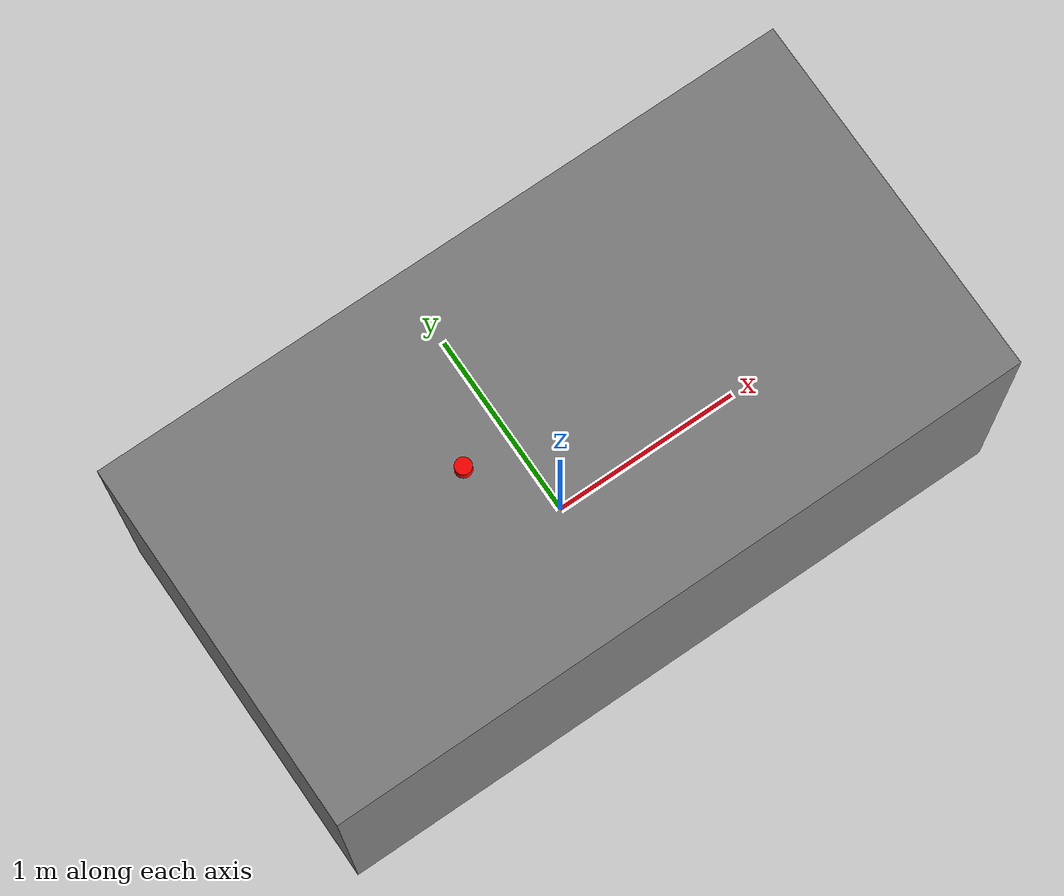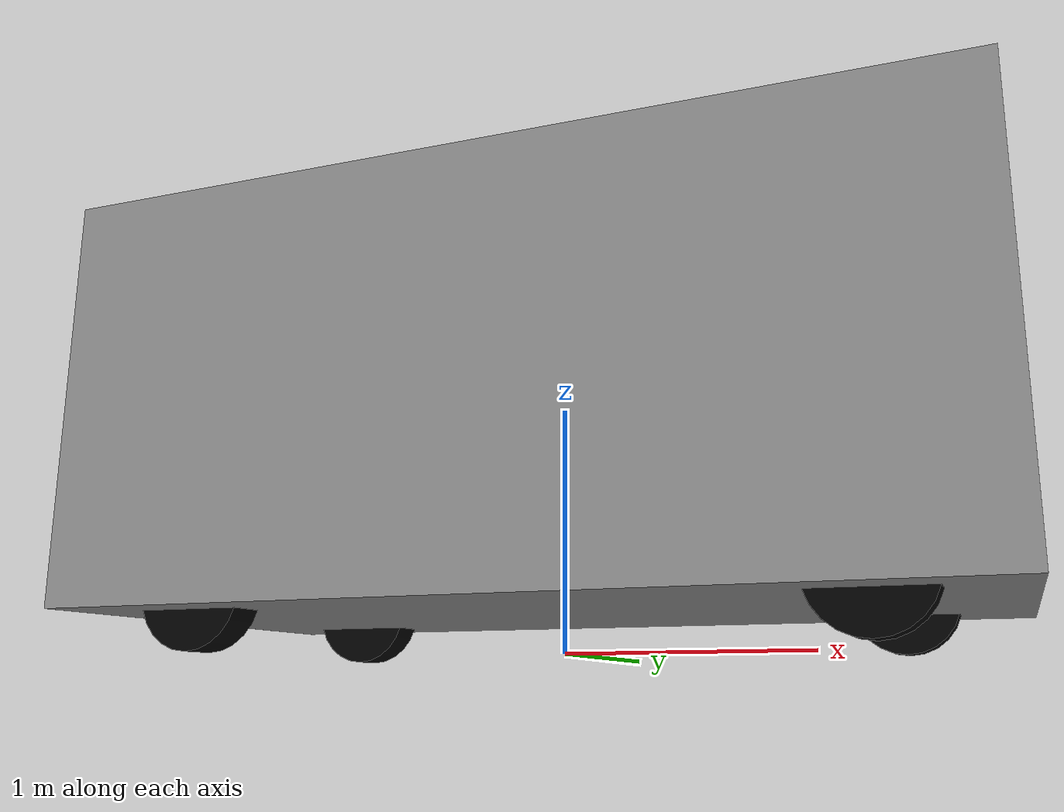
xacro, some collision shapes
<?xml version="1.0"?>
<robot name="imiev" xmlns:xacro="http://www.ros.org/wiki/xacro">

  <!--   PROPIEDADES BASE    -->
  <xacro:property name="base_width" value="1.86"/>
  <xacro:property name="base_length" value="3.56"/>
  <xacro:property name="base_height" value="1.64"/>
  <xacro:property name="base_mass" value="1080"/>

  <!-- MATERIALS -->
  <material name="grey">
    <color rgba="0.5 0.5 0.5 1.0"/>
  </material>
  <material name="black">
    <color rgba="0.0 0.0 0.0 1.0"/>
  </material>
  <material name="red">
    <color rgba="1.0 0.0 0.0 1.0"/>
  </material>

  <!-- RUEDAS -->
  <xacro:property name="wheel_radius" value="0.22"/>
  <xacro:property name="wheel_width"  value="0.15"/>
  <xacro:property name="wheel_ygap"   value="-0.28"/>
  <xacro:property name="wheel_zoff"   value="0.0"/>
  <!-- wheel_xoff was 1.25. New geometry: rear=0, front=2.5 -->
  <!-- We will specify positions directly in macro calls or new properties -->
  <xacro:property name="steer_limit"   value="0.51"/>  <!-- Real i-MiEV: radio giro 4.5m -->

  <!-- SENSORES -->
  <xacro:property name="camera_x" value="0.50"/>
  <xacro:property name="camera_y" value="0.00"/>
  <xacro:property name="camera_z" value="1.53"/>

  <xacro:property name="lidar_x" value="-0.50"/>
  <xacro:property name="lidar_y" value="0.00"/>
  <xacro:property name="lidar_z" value="1.82"/>

  <xacro:property name="imu_x" value="0.50"/>
  <xacro:property name="imu_y" value="-0.30"/>
  <xacro:property name="imu_z" value="1.53"/>

  <xacro:property name="gps_x" value="0.50"/>
  <xacro:property name="gps_y" value="0.30"/>
  <xacro:property name="gps_z" value="1.53"/>

  <!--     MACROS INERCIA    -->
  <xacro:macro name="box_inertia" params="m w h d">
    <inertial>
      <origin xyz="0 0 0.76" rpy="0 0 0"/>
      <mass value="${m}"/>
      <inertia ixx="${(m/12)*(h*h + d*d)}"
               iyy="${(m/12)*(w*w + d*d)}"
               izz="${(m/12)*(w*w + h*h)}"
               ixy="0" ixz="0" iyz="0"/>
    </inertial>
  </xacro:macro>

  <xacro:macro name="cylinder_inertia" params="m r h">
    <inertial>
      <origin xyz="0 0 0" rpy="0 0 0"/>
      <mass value="${m}"/>
      <inertia ixx="${(m/12)*(3*r*r + h*h)}"
               iyy="${(m/12)*(3*r*r + h*h)}"
               izz="${(m/2)*(r*r)}"
               ixy="0" ixz="0" iyz="0"/>
    </inertial>
  </xacro:macro>

  <!--    BASE FOOTPRINT     -->
  <link name="base_footprint"/>

  <!--       BODY LINK       -->
    <link name="base_link">
    <visual>
      <origin xyz="0 0 0.61" rpy="0 0 3.14159"/>
      <geometry>
        <mesh filename="package://imiev/models/imiev/meshes/miev_all.stl" scale="1 1 1"/>
      </geometry>
      <material name="grey"/>
    </visual>

    <collision>
        <geometry>
          <box size="${base_length} ${base_width} ${base_height}"/>
        </geometry>
        <origin xyz="0 0 0.76" rpy="0 0 0"/>
      </collision>

    <xacro:box_inertia m="${base_mass}" w="${base_width}" h="${base_height}" d="${base_length}"/>
  </link>

  <joint name="base_joint" type="fixed">
    <parent link="base_footprint"/>
    <child link="base_link"/>
    <origin xyz="0 0 0.22" rpy="0 0 0"/>
  </joint>

  <!--        RUEDAS         -->

  <!--   MACRO RUEDA TRASERA -->
  <xacro:macro name="rear_wheel" params="prefix x_pos y_reflect">
    <link name="${prefix}_link">
      <visual>
        <origin xyz="0 0 0" rpy="${pi/2} 0 0"/>
        <geometry>
          <cylinder radius="${wheel_radius}" length="${wheel_width}"/>
        </geometry>
        <material name="black"/>
      </visual>

      <collision>
        <origin xyz="0 0 0" rpy="${pi/2} 0 0"/>
        <geometry>
          <cylinder radius="${wheel_radius}" length="${wheel_width}"/>
        </geometry>
        <surface>
          <friction>
            <ode>
              <mu>0.8</mu>
              <mu2>1.2</mu2>
              <fdir1>0 0 0</fdir1>
            </ode>
          </friction>
        </surface>
      </collision>

      <xacro:cylinder_inertia m="15.0" r="${wheel_radius}" h="${wheel_width}"/>
    </link>

    <joint name="${prefix}_joint" type="continuous">
      <parent link="base_link"/>
      <child  link="${prefix}_link"/>
      <!-- x_pos is passed directly -->
      <origin xyz="${x_pos} ${y_reflect*(base_width/2 + wheel_ygap)} ${-wheel_zoff}" rpy="0 0 0"/>
      <axis xyz="0 1 0"/>
      <limit effort="10000" velocity="1000"/>
      <dynamics damping="2.0" friction="0.5"/>  <!-- antes: 0.0 / 0.0 -->
    </joint>
  </xacro:macro>

  <!--   MACRO RUEDA DELANTERA (DIRECCION) -->
  <xacro:macro name="front_wheel" params="prefix x_pos y_reflect">

    <!-- Link de dirección (Steering Link / Mangueta) -->
    <link name="${prefix}_steering_link">
      <visual>
        <geometry><cylinder radius="0.05" length="0.05"/></geometry>
        <material name="blue"><color rgba="0 0 1 1"/></material>
      </visual>
      <inertial>
        <mass value="1.0"/>
        <inertia ixx="0.01" ixy="0" ixz="0" iyy="0.01" iyz="0" izz="0.01"/>
      </inertial>
    </link>

    <!-- Joint de dirección (Revolute) -->
    <joint name="${prefix}_steering_joint" type="revolute">
      <parent link="base_link"/>
      <child link="${prefix}_steering_link"/>
      <!-- x_pos is passed directly -->
      <origin xyz="${x_pos} ${y_reflect*(base_width/2 + wheel_ygap)} ${-wheel_zoff}" rpy="0 0 0"/>
      <axis xyz="0 0 1"/> <!-- Gira en Z -->
      <limit lower="${-steer_limit}" upper="${steer_limit}" effort="10000" velocity="5.0"/>
      <dynamics damping="10.0" friction="2.0"/>  <!-- antes: 1.0 / 1.0 -->
    </joint>

    <!-- Link de la rueda -->
    <link name="${prefix}_link">
      <visual>
        <origin xyz="0 0 0" rpy="${pi/2} 0 0"/>
        <geometry>
          <cylinder radius="${wheel_radius}" length="${wheel_width}"/>
        </geometry>
        <material name="black"/>
      </visual>
      <collision>
        <origin xyz="0 0 0" rpy="${pi/2} 0 0"/>
        <geometry>
          <cylinder radius="${wheel_radius}" length="${wheel_width}"/>
        </geometry>
         <surface>
          <friction>
            <ode>
              <mu>0.8</mu>
              <mu2>1.2</mu2>
              <fdir1>0 0 0</fdir1>
            </ode>
          </friction>
        </surface>
      </collision>
      <xacro:cylinder_inertia m="15.0" r="${wheel_radius}" h="${wheel_width}"/>
    </link>

    <!-- Joint de la rueda (Continuous) -->
    <joint name="${prefix}_joint" type="continuous">
      <parent link="${prefix}_steering_link"/>
      <child  link="${prefix}_link"/>
      <origin xyz="0 0 0" rpy="0 0 0"/>
      <axis xyz="0 1 0"/> <!-- Gira en Y -->
      <limit effort="10000" velocity="1000"/>
      <dynamics damping="0.0" friction="0.05"/>
    </joint>

  </xacro:macro>

  <!-- Instanciar ruedas -->
  <!-- Traseras (Fijas) - X=-1.275 (wheelbase 2.55m) -->
  <xacro:rear_wheel prefix="rear_left_wheel" x_pos="-1.275" y_reflect="1"/>
  <xacro:rear_wheel prefix="rear_right_wheel" x_pos="-1.275" y_reflect="-1"/>

  <!-- Delanteras (Ackermann) - X=1.275 (wheelbase 2.55m) -->
  <xacro:front_wheel prefix="front_left_wheel" x_pos="1.275"  y_reflect="1"/>
  <xacro:front_wheel prefix="front_right_wheel" x_pos="1.275"  y_reflect="-1"/>

  <!--   SENSORES SEPARADOS  -->

  <!-- CAMERA MODULE -->
  <xacro:macro name="camera_module" params="x y z r p yaw parent">
    <link name="camera_link">
      <visual>
        <geometry><box size="0.05 0.05 0.05"/></geometry>
        <material name="red"/>
      </visual>
    </link>
    <joint name="camera_joint" type="fixed">
      <parent link="${parent}"/>
      <child  link="camera_link"/>
      <origin xyz="${x} ${y} ${z}" rpy="${r} ${p} ${yaw}"/>
    </joint>
  </xacro:macro>

  <!-- LIDAR MODULE -->
  <xacro:macro name="lidar_module" params="x y z r p yaw parent">
    <link name="lidar_link">
      <visual>
        <geometry><cylinder radius="0.04" length="0.06"/></geometry>
        <material name="red"/>
      </visual>
    </link>
    <joint name="lidar_joint" type="fixed">
      <parent link="${parent}"/>
      <child  link="lidar_link"/>
      <origin xyz="${x} ${y} ${z}" rpy="${r} ${p} ${yaw}"/>
    </joint>
  </xacro:macro>

  <!-- IMU MODULE -->
  <xacro:macro name="imu_module" params="x y z r p yaw parent">
    <link name="imu_link">
      <visual>
        <geometry><box size="0.04 0.04 0.04"/></geometry>
        <material name="red"/>
      </visual>
    </link>
    <joint name="imu_joint" type="fixed">
      <parent link="${parent}"/>
      <child  link="imu_link"/>
      <origin xyz="${x} ${y} ${z}" rpy="${r} ${p} ${yaw}"/>
    </joint>
  </xacro:macro>

  <!-- GPS MODULE -->
  <xacro:macro name="gps_module" params="x y z r p yaw parent">
    <link name="gps_link">
      <visual>
        <geometry><sphere radius="0.03"/></geometry>
        <material name="red"/>
      </visual>
    </link>
    <joint name="gps_joint" type="fixed">
      <parent link="${parent}"/>
      <child  link="gps_link"/>
      <origin xyz="${x} ${y} ${z}" rpy="${r} ${p} ${yaw}"/>
    </joint>
  </xacro:macro>

  <!-- Instantiate modules -->
  <xacro:camera_module x="${camera_x}" y="${camera_y}" z="${camera_z}" r="0" p="0" yaw="0" parent="base_link"/>
  <xacro:lidar_module  x="${lidar_x}"  y="${lidar_y}"  z="${lidar_z}"  r="0" p="0" yaw="0" parent="base_link"/>
  <xacro:imu_module    x="${imu_x}"    y="${imu_y}"    z="${imu_z}"    r="0" p="0" yaw="0" parent="base_link"/>
  <xacro:gps_module    x="${gps_x}"    y="${gps_y}"    z="${gps_z}"    r="0" p="0" yaw="0" parent="base_link"/>

  <!-- ARCHIVOS ADICIONALES -->
  <xacro:include filename="$(find imiev)/models/imiev/robot.gazebo" />

</robot>
